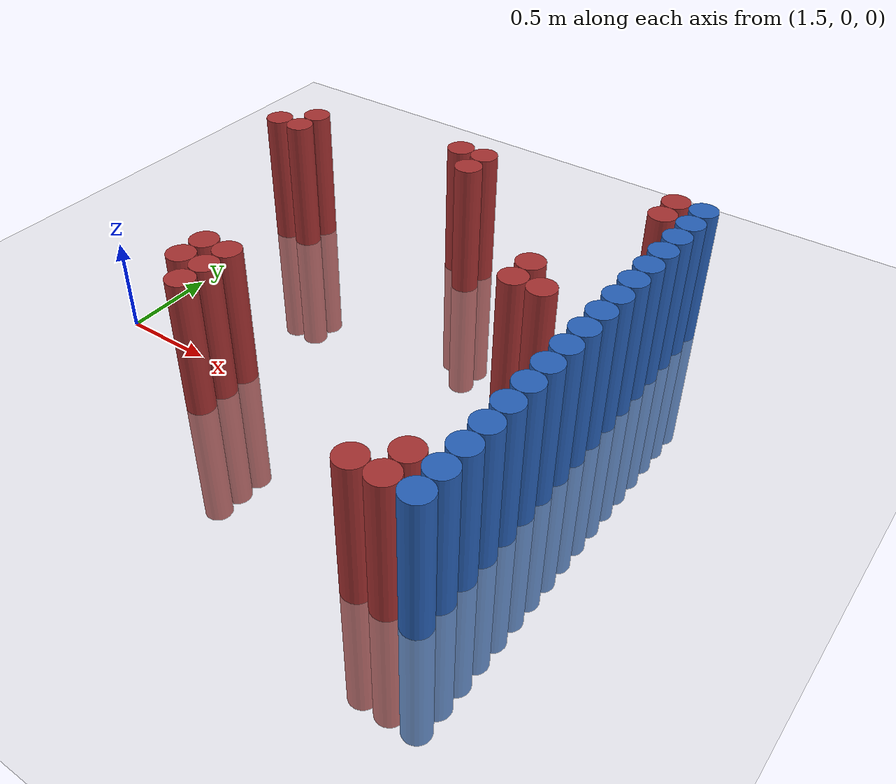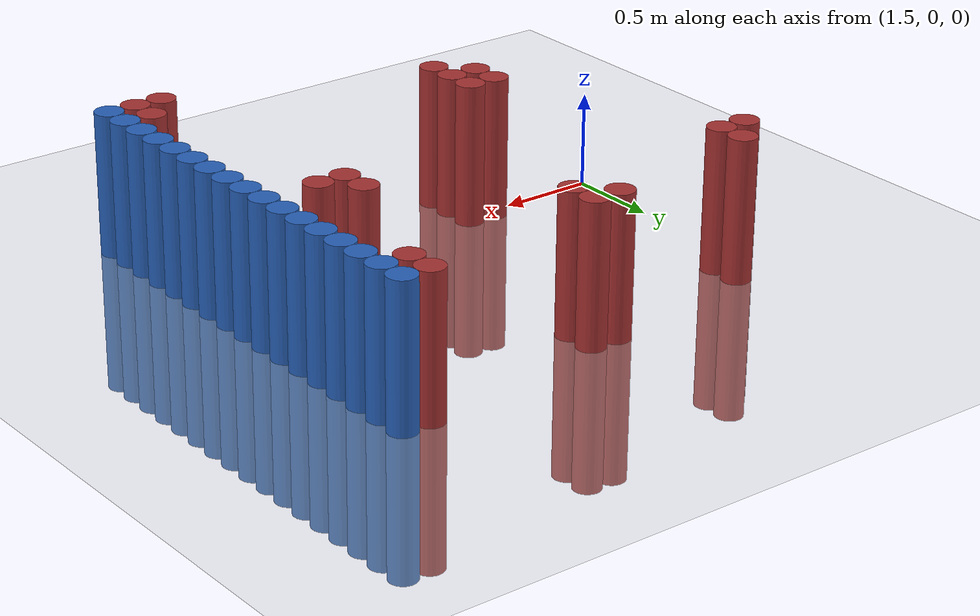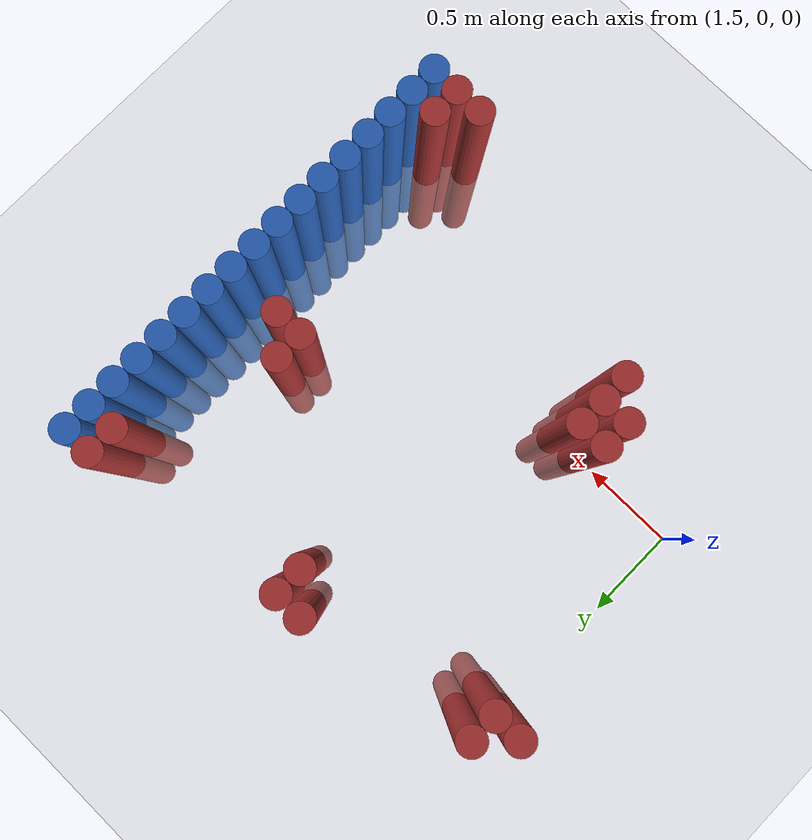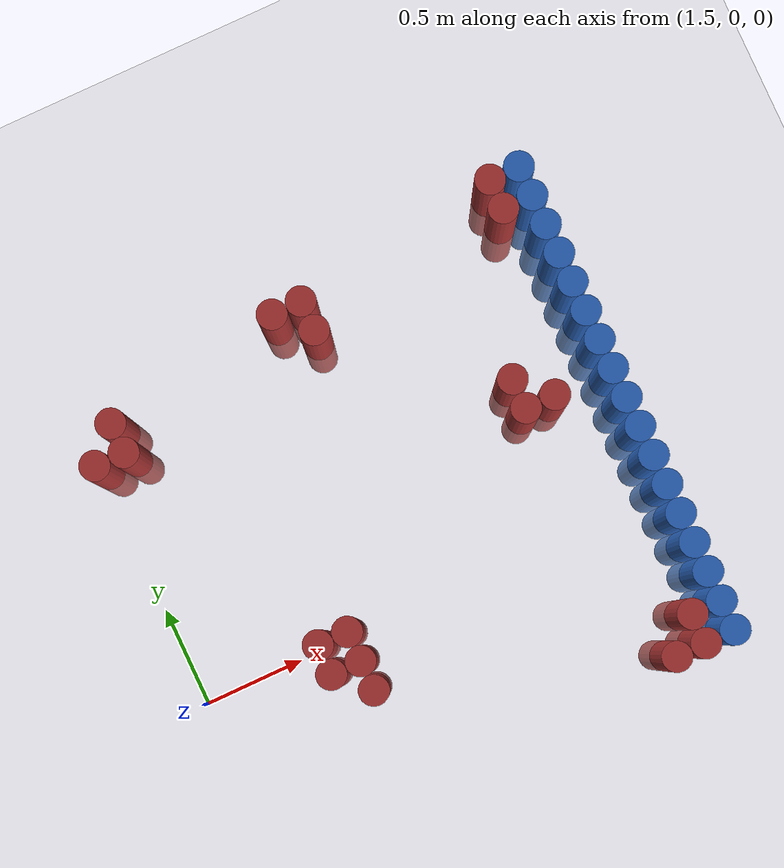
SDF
<sdf version="1.6">
 <world name="default">
  <model name="ground_plane">
   <static>1</static>
   <link name="link">
    <collision name="collision">
     <geometry><plane><normal>0 0 1</normal><size>100 100</size></plane></geometry>
     <surface><friction><ode><mu>100</mu><mu2>50</mu2></ode></friction></surface>
    </collision>
    <visual name="visual">
     <cast_shadows>0</cast_shadows>
     <geometry><plane><normal>0 0 1</normal><size>100 100</size></plane></geometry>
     <material>
      <script><uri>file://media/materials/scripts/gazebo.material</uri><name>Gazebo/Grey</name></script>
     </material>
    </visual>
   </link>
  </model>
  <model name="unit_cylinder_104">
   <static>1</static>
   <pose>3.925000 -0.725000 0.000000 0.000000 0.000000 0.000000</pose>
   <link name="link">
    <inertial>
     <mass>1</mass>
     <inertia><ixx>0.145833</ixx><ixy>0</ixy><ixz>0</ixz><iyy>0.145833</iyy><iyz>0</iyz><izz>0.125</izz></inertia>
    </inertial>
    <collision name="collision">
     <geometry><cylinder><radius>0.075000</radius><length>1.5</length></cylinder></geometry>
    </collision>
    <visual name="visual">
     <geometry><cylinder><radius>0.075000</radius><length>1.5</length></cylinder></geometry>
     <material>
      <ambient>0.152000 0.379000 0.720000 1</ambient>
      <diffuse>0.152000 0.379000 0.720000 1</diffuse>
     </material>
     <material>
      <script><name>Gazebo/Grey</name><uri>file://media/materials/scripts/gazebo.material</uri></script>
     </material>
    </visual>
   </link>
  </model>
  <model name="unit_cylinder_106">
   <static>1</static>
   <pose>3.925000 -0.575000 0.000000 0.000000 0.000000 0.000000</pose>
   <link name="link">
    <inertial>
     <mass>1</mass>
     <inertia><ixx>0.145833</ixx><ixy>0</ixy><ixz>0</ixz><iyy>0.145833</iyy><iyz>0</iyz><izz>0.125</izz></inertia>
    </inertial>
    <collision name="collision">
     <geometry><cylinder><radius>0.075000</radius><length>1.5</length></cylinder></geometry>
    </collision>
    <visual name="visual">
     <geometry><cylinder><radius>0.075000</radius><length>1.5</length></cylinder></geometry>
     <material>
      <ambient>0.152000 0.379000 0.720000 1</ambient>
      <diffuse>0.152000 0.379000 0.720000 1</diffuse>
     </material>
     <material>
      <script><name>Gazebo/Grey</name><uri>file://media/materials/scripts/gazebo.material</uri></script>
     </material>
    </visual>
   </link>
  </model>
  <model name="unit_cylinder_108">
   <static>1</static>
   <pose>3.925000 -0.425000 0.000000 0.000000 0.000000 0.000000</pose>
   <link name="link">
    <inertial>
     <mass>1</mass>
     <inertia><ixx>0.145833</ixx><ixy>0</ixy><ixz>0</ixz><iyy>0.145833</iyy><iyz>0</iyz><izz>0.125</izz></inertia>
    </inertial>
    <collision name="collision">
     <geometry><cylinder><radius>0.075000</radius><length>1.5</length></cylinder></geometry>
    </collision>
    <visual name="visual">
     <geometry><cylinder><radius>0.075000</radius><length>1.5</length></cylinder></geometry>
     <material>
      <ambient>0.152000 0.379000 0.720000 1</ambient>
      <diffuse>0.152000 0.379000 0.720000 1</diffuse>
     </material>
     <material>
      <script><name>Gazebo/Grey</name><uri>file://media/materials/scripts/gazebo.material</uri></script>
     </material>
    </visual>
   </link>
  </model>
  <model name="unit_cylinder_110">
   <static>1</static>
   <pose>3.925000 -0.275000 0.000000 0.000000 0.000000 0.000000</pose>
   <link name="link">
    <inertial>
     <mass>1</mass>
     <inertia><ixx>0.145833</ixx><ixy>0</ixy><ixz>0</ixz><iyy>0.145833</iyy><iyz>0</iyz><izz>0.125</izz></inertia>
    </inertial>
    <collision name="collision">
     <geometry><cylinder><radius>0.075000</radius><length>1.5</length></cylinder></geometry>
    </collision>
    <visual name="visual">
     <geometry><cylinder><radius>0.075000</radius><length>1.5</length></cylinder></geometry>
     <material>
      <ambient>0.152000 0.379000 0.720000 1</ambient>
      <diffuse>0.152000 0.379000 0.720000 1</diffuse>
     </material>
     <material>
      <script><name>Gazebo/Grey</name><uri>file://media/materials/scripts/gazebo.material</uri></script>
     </material>
    </visual>
   </link>
  </model>
  <model name="unit_cylinder_112">
   <static>1</static>
   <pose>3.925000 -0.125000 0.000000 0.000000 0.000000 0.000000</pose>
   <link name="link">
    <inertial>
     <mass>1</mass>
     <inertia><ixx>0.145833</ixx><ixy>0</ixy><ixz>0</ixz><iyy>0.145833</iyy><iyz>0</iyz><izz>0.125</izz></inertia>
    </inertial>
    <collision name="collision">
     <geometry><cylinder><radius>0.075000</radius><length>1.5</length></cylinder></geometry>
    </collision>
    <visual name="visual">
     <geometry><cylinder><radius>0.075000</radius><length>1.5</length></cylinder></geometry>
     <material>
      <ambient>0.152000 0.379000 0.720000 1</ambient>
      <diffuse>0.152000 0.379000 0.720000 1</diffuse>
     </material>
     <material>
      <script><name>Gazebo/Grey</name><uri>file://media/materials/scripts/gazebo.material</uri></script>
     </material>
    </visual>
   </link>
  </model>
  <model name="unit_cylinder_114">
   <static>1</static>
   <pose>3.925000 0.025000 0.000000 0.000000 0.000000 0.000000</pose>
   <link name="link">
    <inertial>
     <mass>1</mass>
     <inertia><ixx>0.145833</ixx><ixy>0</ixy><ixz>0</ixz><iyy>0.145833</iyy><iyz>0</iyz><izz>0.125</izz></inertia>
    </inertial>
    <collision name="collision">
     <geometry><cylinder><radius>0.075000</radius><length>1.5</length></cylinder></geometry>
    </collision>
    <visual name="visual">
     <geometry><cylinder><radius>0.075000</radius><length>1.5</length></cylinder></geometry>
     <material>
      <ambient>0.152000 0.379000 0.720000 1</ambient>
      <diffuse>0.152000 0.379000 0.720000 1</diffuse>
     </material>
     <material>
      <script><name>Gazebo/Grey</name><uri>file://media/materials/scripts/gazebo.material</uri></script>
     </material>
    </visual>
   </link>
  </model>
  <model name="unit_cylinder_116">
   <static>1</static>
   <pose>3.925000 0.175000 0.000000 0.000000 0.000000 0.000000</pose>
   <link name="link">
    <inertial>
     <mass>1</mass>
     <inertia><ixx>0.145833</ixx><ixy>0</ixy><ixz>0</ixz><iyy>0.145833</iyy><iyz>0</iyz><izz>0.125</izz></inertia>
    </inertial>
    <collision name="collision">
     <geometry><cylinder><radius>0.075000</radius><length>1.5</length></cylinder></geometry>
    </collision>
    <visual name="visual">
     <geometry><cylinder><radius>0.075000</radius><length>1.5</length></cylinder></geometry>
     <material>
      <ambient>0.152000 0.379000 0.720000 1</ambient>
      <diffuse>0.152000 0.379000 0.720000 1</diffuse>
     </material>
     <material>
      <script><name>Gazebo/Grey</name><uri>file://media/materials/scripts/gazebo.material</uri></script>
     </material>
    </visual>
   </link>
  </model>
  <model name="unit_cylinder_118">
   <static>1</static>
   <pose>3.925000 0.325000 0.000000 0.000000 0.000000 0.000000</pose>
   <link name="link">
    <inertial>
     <mass>1</mass>
     <inertia><ixx>0.145833</ixx><ixy>0</ixy><ixz>0</ixz><iyy>0.145833</iyy><iyz>0</iyz><izz>0.125</izz></inertia>
    </inertial>
    <collision name="collision">
     <geometry><cylinder><radius>0.075000</radius><length>1.5</length></cylinder></geometry>
    </collision>
    <visual name="visual">
     <geometry><cylinder><radius>0.075000</radius><length>1.5</length></cylinder></geometry>
     <material>
      <ambient>0.152000 0.379000 0.720000 1</ambient>
      <diffuse>0.152000 0.379000 0.720000 1</diffuse>
     </material>
     <material>
      <script><name>Gazebo/Grey</name><uri>file://media/materials/scripts/gazebo.material</uri></script>
     </material>
    </visual>
   </link>
  </model>
  <model name="unit_cylinder_120">
   <static>1</static>
   <pose>3.925000 0.475000 0.000000 0.000000 0.000000 0.000000</pose>
   <link name="link">
    <inertial>
     <mass>1</mass>
     <inertia><ixx>0.145833</ixx><ixy>0</ixy><ixz>0</ixz><iyy>0.145833</iyy><iyz>0</iyz><izz>0.125</izz></inertia>
    </inertial>
    <collision name="collision">
     <geometry><cylinder><radius>0.075000</radius><length>1.5</length></cylinder></geometry>
    </collision>
    <visual name="visual">
     <geometry><cylinder><radius>0.075000</radius><length>1.5</length></cylinder></geometry>
     <material>
      <ambient>0.152000 0.379000 0.720000 1</ambient>
      <diffuse>0.152000 0.379000 0.720000 1</diffuse>
     </material>
     <material>
      <script><name>Gazebo/Grey</name><uri>file://media/materials/scripts/gazebo.material</uri></script>
     </material>
    </visual>
   </link>
  </model>
  <model name="unit_cylinder_122">
   <static>1</static>
   <pose>3.925000 0.625000 0.000000 0.000000 0.000000 0.000000</pose>
   <link name="link">
    <inertial>
     <mass>1</mass>
     <inertia><ixx>0.145833</ixx><ixy>0</ixy><ixz>0</ixz><iyy>0.145833</iyy><iyz>0</iyz><izz>0.125</izz></inertia>
    </inertial>
    <collision name="collision">
     <geometry><cylinder><radius>0.075000</radius><length>1.5</length></cylinder></geometry>
    </collision>
    <visual name="visual">
     <geometry><cylinder><radius>0.075000</radius><length>1.5</length></cylinder></geometry>
     <material>
      <ambient>0.152000 0.379000 0.720000 1</ambient>
      <diffuse>0.152000 0.379000 0.720000 1</diffuse>
     </material>
     <material>
      <script><name>Gazebo/Grey</name><uri>file://media/materials/scripts/gazebo.material</uri></script>
     </material>
    </visual>
   </link>
  </model>
  <model name="unit_cylinder_124">
   <static>1</static>
   <pose>3.925000 0.775000 0.000000 0.000000 0.000000 0.000000</pose>
   <link name="link">
    <inertial>
     <mass>1</mass>
     <inertia><ixx>0.145833</ixx><ixy>0</ixy><ixz>0</ixz><iyy>0.145833</iyy><iyz>0</iyz><izz>0.125</izz></inertia>
    </inertial>
    <collision name="collision">
     <geometry><cylinder><radius>0.075000</radius><length>1.5</length></cylinder></geometry>
    </collision>
    <visual name="visual">
     <geometry><cylinder><radius>0.075000</radius><length>1.5</length></cylinder></geometry>
     <material>
      <ambient>0.152000 0.379000 0.720000 1</ambient>
      <diffuse>0.152000 0.379000 0.720000 1</diffuse>
     </material>
     <material>
      <script><name>Gazebo/Grey</name><uri>file://media/materials/scripts/gazebo.material</uri></script>
     </material>
    </visual>
   </link>
  </model>
  <model name="unit_cylinder_126">
   <static>1</static>
   <pose>3.925000 0.925000 0.000000 0.000000 0.000000 0.000000</pose>
   <link name="link">
    <inertial>
     <mass>1</mass>
     <inertia><ixx>0.145833</ixx><ixy>0</ixy><ixz>0</ixz><iyy>0.145833</iyy><iyz>0</iyz><izz>0.125</izz></inertia>
    </inertial>
    <collision name="collision">
     <geometry><cylinder><radius>0.075000</radius><length>1.5</length></cylinder></geometry>
    </collision>
    <visual name="visual">
     <geometry><cylinder><radius>0.075000</radius><length>1.5</length></cylinder></geometry>
     <material>
      <ambient>0.152000 0.379000 0.720000 1</ambient>
      <diffuse>0.152000 0.379000 0.720000 1</diffuse>
     </material>
     <material>
      <script><name>Gazebo/Grey</name><uri>file://media/materials/scripts/gazebo.material</uri></script>
     </material>
    </visual>
   </link>
  </model>
  <model name="unit_cylinder_128">
   <static>1</static>
   <pose>3.925000 1.075000 0.000000 0.000000 0.000000 0.000000</pose>
   <link name="link">
    <inertial>
     <mass>1</mass>
     <inertia><ixx>0.145833</ixx><ixy>0</ixy><ixz>0</ixz><iyy>0.145833</iyy><iyz>0</iyz><izz>0.125</izz></inertia>
    </inertial>
    <collision name="collision">
     <geometry><cylinder><radius>0.075000</radius><length>1.5</length></cylinder></geometry>
    </collision>
    <visual name="visual">
     <geometry><cylinder><radius>0.075000</radius><length>1.5</length></cylinder></geometry>
     <material>
      <ambient>0.152000 0.379000 0.720000 1</ambient>
      <diffuse>0.152000 0.379000 0.720000 1</diffuse>
     </material>
     <material>
      <script><name>Gazebo/Grey</name><uri>file://media/materials/scripts/gazebo.material</uri></script>
     </material>
    </visual>
   </link>
  </model>
  <model name="unit_cylinder_130">
   <static>1</static>
   <pose>3.925000 1.225000 0.000000 0.000000 0.000000 0.000000</pose>
   <link name="link">
    <inertial>
     <mass>1</mass>
     <inertia><ixx>0.145833</ixx><ixy>0</ixy><ixz>0</ixz><iyy>0.145833</iyy><iyz>0</iyz><izz>0.125</izz></inertia>
    </inertial>
    <collision name="collision">
     <geometry><cylinder><radius>0.075000</radius><length>1.5</length></cylinder></geometry>
    </collision>
    <visual name="visual">
     <geometry><cylinder><radius>0.075000</radius><length>1.5</length></cylinder></geometry>
     <material>
      <ambient>0.152000 0.379000 0.720000 1</ambient>
      <diffuse>0.152000 0.379000 0.720000 1</diffuse>
     </material>
     <material>
      <script><name>Gazebo/Grey</name><uri>file://media/materials/scripts/gazebo.material</uri></script>
     </material>
    </visual>
   </link>
  </model>
  <model name="unit_cylinder_132">
   <static>1</static>
   <pose>3.925000 1.375000 0.000000 0.000000 0.000000 0.000000</pose>
   <link name="link">
    <inertial>
     <mass>1</mass>
     <inertia><ixx>0.145833</ixx><ixy>0</ixy><ixz>0</ixz><iyy>0.145833</iyy><iyz>0</iyz><izz>0.125</izz></inertia>
    </inertial>
    <collision name="collision">
     <geometry><cylinder><radius>0.075000</radius><length>1.5</length></cylinder></geometry>
    </collision>
    <visual name="visual">
     <geometry><cylinder><radius>0.075000</radius><length>1.5</length></cylinder></geometry>
     <material>
      <ambient>0.152000 0.379000 0.720000 1</ambient>
      <diffuse>0.152000 0.379000 0.720000 1</diffuse>
     </material>
     <material>
      <script><name>Gazebo/Grey</name><uri>file://media/materials/scripts/gazebo.material</uri></script>
     </material>
    </visual>
   </link>
  </model>
  <model name="unit_cylinder_134">
   <static>1</static>
   <pose>3.925000 1.525000 0.000000 0.000000 0.000000 0.000000</pose>
   <link name="link">
    <inertial>
     <mass>1</mass>
     <inertia><ixx>0.145833</ixx><ixy>0</ixy><ixz>0</ixz><iyy>0.145833</iyy><iyz>0</iyz><izz>0.125</izz></inertia>
    </inertial>
    <collision name="collision">
     <geometry><cylinder><radius>0.075000</radius><length>1.5</length></cylinder></geometry>
    </collision>
    <visual name="visual">
     <geometry><cylinder><radius>0.075000</radius><length>1.5</length></cylinder></geometry>
     <material>
      <ambient>0.152000 0.379000 0.720000 1</ambient>
      <diffuse>0.152000 0.379000 0.720000 1</diffuse>
     </material>
     <material>
      <script><name>Gazebo/Grey</name><uri>file://media/materials/scripts/gazebo.material</uri></script>
     </material>
    </visual>
   </link>
  </model>
  <model name="unit_cylinder_136">
   <static>1</static>
   <pose>3.925000 1.675000 0.000000 0.000000 0.000000 0.000000</pose>
   <link name="link">
    <inertial>
     <mass>1</mass>
     <inertia><ixx>0.145833</ixx><ixy>0</ixy><ixz>0</ixz><iyy>0.145833</iyy><iyz>0</iyz><izz>0.125</izz></inertia>
    </inertial>
    <collision name="collision">
     <geometry><cylinder><radius>0.075000</radius><length>1.5</length></cylinder></geometry>
    </collision>
    <visual name="visual">
     <geometry><cylinder><radius>0.075000</radius><length>1.5</length></cylinder></geometry>
     <material>
      <ambient>0.152000 0.379000 0.720000 1</ambient>
      <diffuse>0.152000 0.379000 0.720000 1</diffuse>
     </material>
     <material>
      <script><name>Gazebo/Grey</name><uri>file://media/materials/scripts/gazebo.material</uri></script>
     </material>
    </visual>
   </link>
  </model>
  <model name="unit_cylinder_425">
   <static>1</static>
   <pose>1.525000 1.225000 0.000000 0.000000 0.000000 0.000000</pose>
   <link name="link">
    <inertial>
     <mass>1</mass>
     <inertia><ixx>0.145833</ixx><ixy>0</ixy><ixz>0</ixz><iyy>0.145833</iyy><iyz>0</iyz><izz>0.125</izz></inertia>
    </inertial>
    <collision name="collision">
     <geometry><cylinder><radius>0.075000</radius><length>1.5</length></cylinder></geometry>
    </collision>
    <visual name="visual">
     <geometry><cylinder><radius>0.075000</radius><length>1.5</length></cylinder></geometry>
     <material>
      <ambient>0.648000 0.192000 0.192000 1</ambient>
      <diffuse>0.648000 0.192000 0.192000 1</diffuse>
     </material>
     <material>
      <script><name>Gazebo/Grey</name><uri>file://media/materials/scripts/gazebo.material</uri></script>
     </material>
    </visual>
   </link>
  </model>
  <model name="unit_cylinder_428">
   <static>1</static>
   <pose>1.675000 1.225000 0.000000 0.000000 0.000000 0.000000</pose>
   <link name="link">
    <inertial>
     <mass>1</mass>
     <inertia><ixx>0.145833</ixx><ixy>0</ixy><ixz>0</ixz><iyy>0.145833</iyy><iyz>0</iyz><izz>0.125</izz></inertia>
    </inertial>
    <collision name="collision">
     <geometry><cylinder><radius>0.075000</radius><length>1.5</length></cylinder></geometry>
    </collision>
    <visual name="visual">
     <geometry><cylinder><radius>0.075000</radius><length>1.5</length></cylinder></geometry>
     <material>
      <ambient>0.648000 0.192000 0.192000 1</ambient>
      <diffuse>0.648000 0.192000 0.192000 1</diffuse>
     </material>
     <material>
      <script><name>Gazebo/Grey</name><uri>file://media/materials/scripts/gazebo.material</uri></script>
     </material>
    </visual>
   </link>
  </model>
  <model name="unit_cylinder_429">
   <static>1</static>
   <pose>1.675000 1.375000 0.000000 0.000000 0.000000 0.000000</pose>
   <link name="link">
    <inertial>
     <mass>1</mass>
     <inertia><ixx>0.145833</ixx><ixy>0</ixy><ixz>0</ixz><iyy>0.145833</iyy><iyz>0</iyz><izz>0.125</izz></inertia>
    </inertial>
    <collision name="collision">
     <geometry><cylinder><radius>0.075000</radius><length>1.5</length></cylinder></geometry>
    </collision>
    <visual name="visual">
     <geometry><cylinder><radius>0.075000</radius><length>1.5</length></cylinder></geometry>
     <material>
      <ambient>0.648000 0.192000 0.192000 1</ambient>
      <diffuse>0.648000 0.192000 0.192000 1</diffuse>
     </material>
     <material>
      <script><name>Gazebo/Grey</name><uri>file://media/materials/scripts/gazebo.material</uri></script>
     </material>
    </visual>
   </link>
  </model>
  <model name="unit_cylinder_452">
   <static>1</static>
   <pose>2.125000 -0.125000 0.000000 0.000000 0.000000 0.000000</pose>
   <link name="link">
    <inertial>
     <mass>1</mass>
     <inertia><ixx>0.145833</ixx><ixy>0</ixy><ixz>0</ixz><iyy>0.145833</iyy><iyz>0</iyz><izz>0.125</izz></inertia>
    </inertial>
    <collision name="collision">
     <geometry><cylinder><radius>0.075000</radius><length>1.5</length></cylinder></geometry>
    </collision>
    <visual name="visual">
     <geometry><cylinder><radius>0.075000</radius><length>1.5</length></cylinder></geometry>
     <material>
      <ambient>0.648000 0.192000 0.192000 1</ambient>
      <diffuse>0.648000 0.192000 0.192000 1</diffuse>
     </material>
     <material>
      <script><name>Gazebo/Grey</name><uri>file://media/materials/scripts/gazebo.material</uri></script>
     </material>
    </visual>
   </link>
  </model>
  <model name="unit_cylinder_453">
   <static>1</static>
   <pose>2.125000 0.025000 0.000000 0.000000 0.000000 0.000000</pose>
   <link name="link">
    <inertial>
     <mass>1</mass>
     <inertia><ixx>0.145833</ixx><ixy>0</ixy><ixz>0</ixz><iyy>0.145833</iyy><iyz>0</iyz><izz>0.125</izz></inertia>
    </inertial>
    <collision name="collision">
     <geometry><cylinder><radius>0.075000</radius><length>1.5</length></cylinder></geometry>
    </collision>
    <visual name="visual">
     <geometry><cylinder><radius>0.075000</radius><length>1.5</length></cylinder></geometry>
     <material>
      <ambient>0.648000 0.192000 0.192000 1</ambient>
      <diffuse>0.648000 0.192000 0.192000 1</diffuse>
     </material>
     <material>
      <script><name>Gazebo/Grey</name><uri>file://media/materials/scripts/gazebo.material</uri></script>
     </material>
    </visual>
   </link>
  </model>
  <model name="unit_cylinder_460">
   <static>1</static>
   <pose>2.275000 -0.275000 0.000000 0.000000 0.000000 0.000000</pose>
   <link name="link">
    <inertial>
     <mass>1</mass>
     <inertia><ixx>0.145833</ixx><ixy>0</ixy><ixz>0</ixz><iyy>0.145833</iyy><iyz>0</iyz><izz>0.125</izz></inertia>
    </inertial>
    <collision name="collision">
     <geometry><cylinder><radius>0.075000</radius><length>1.5</length></cylinder></geometry>
    </collision>
    <visual name="visual">
     <geometry><cylinder><radius>0.075000</radius><length>1.5</length></cylinder></geometry>
     <material>
      <ambient>0.648000 0.192000 0.192000 1</ambient>
      <diffuse>0.648000 0.192000 0.192000 1</diffuse>
     </material>
     <material>
      <script><name>Gazebo/Grey</name><uri>file://media/materials/scripts/gazebo.material</uri></script>
     </material>
    </visual>
   </link>
  </model>
  <model name="unit_cylinder_461">
   <static>1</static>
   <pose>2.275000 -0.125000 0.000000 0.000000 0.000000 0.000000</pose>
   <link name="link">
    <inertial>
     <mass>1</mass>
     <inertia><ixx>0.145833</ixx><ixy>0</ixy><ixz>0</ixz><iyy>0.145833</iyy><iyz>0</iyz><izz>0.125</izz></inertia>
    </inertial>
    <collision name="collision">
     <geometry><cylinder><radius>0.075000</radius><length>1.5</length></cylinder></geometry>
    </collision>
    <visual name="visual">
     <geometry><cylinder><radius>0.075000</radius><length>1.5</length></cylinder></geometry>
     <material>
      <ambient>0.648000 0.192000 0.192000 1</ambient>
      <diffuse>0.648000 0.192000 0.192000 1</diffuse>
     </material>
     <material>
      <script><name>Gazebo/Grey</name><uri>file://media/materials/scripts/gazebo.material</uri></script>
     </material>
    </visual>
   </link>
  </model>
  <model name="unit_cylinder_462">
   <static>1</static>
   <pose>2.275000 0.025000 0.000000 0.000000 0.000000 0.000000</pose>
   <link name="link">
    <inertial>
     <mass>1</mass>
     <inertia><ixx>0.145833</ixx><ixy>0</ixy><ixz>0</ixz><iyy>0.145833</iyy><iyz>0</iyz><izz>0.125</izz></inertia>
    </inertial>
    <collision name="collision">
     <geometry><cylinder><radius>0.075000</radius><length>1.5</length></cylinder></geometry>
    </collision>
    <visual name="visual">
     <geometry><cylinder><radius>0.075000</radius><length>1.5</length></cylinder></geometry>
     <material>
      <ambient>0.648000 0.192000 0.192000 1</ambient>
      <diffuse>0.648000 0.192000 0.192000 1</diffuse>
     </material>
     <material>
      <script><name>Gazebo/Grey</name><uri>file://media/materials/scripts/gazebo.material</uri></script>
     </material>
    </visual>
   </link>
  </model>
  <model name="unit_cylinder_490">
   <static>1</static>
   <pose>2.575000 1.525000 0.000000 0.000000 0.000000 0.000000</pose>
   <link name="link">
    <inertial>
     <mass>1</mass>
     <inertia><ixx>0.145833</ixx><ixy>0</ixy><ixz>0</ixz><iyy>0.145833</iyy><iyz>0</iyz><izz>0.125</izz></inertia>
    </inertial>
    <collision name="collision">
     <geometry><cylinder><radius>0.075000</radius><length>1.5</length></cylinder></geometry>
    </collision>
    <visual name="visual">
     <geometry><cylinder><radius>0.075000</radius><length>1.5</length></cylinder></geometry>
     <material>
      <ambient>0.648000 0.192000 0.192000 1</ambient>
      <diffuse>0.648000 0.192000 0.192000 1</diffuse>
     </material>
     <material>
      <script><name>Gazebo/Grey</name><uri>file://media/materials/scripts/gazebo.material</uri></script>
     </material>
    </visual>
   </link>
  </model>
  <model name="unit_cylinder_496">
   <static>1</static>
   <pose>2.725000 1.375000 0.000000 0.000000 0.000000 0.000000</pose>
   <link name="link">
    <inertial>
     <mass>1</mass>
     <inertia><ixx>0.145833</ixx><ixy>0</ixy><ixz>0</ixz><iyy>0.145833</iyy><iyz>0</iyz><izz>0.125</izz></inertia>
    </inertial>
    <collision name="collision">
     <geometry><cylinder><radius>0.075000</radius><length>1.5</length></cylinder></geometry>
    </collision>
    <visual name="visual">
     <geometry><cylinder><radius>0.075000</radius><length>1.5</length></cylinder></geometry>
     <material>
      <ambient>0.648000 0.192000 0.192000 1</ambient>
      <diffuse>0.648000 0.192000 0.192000 1</diffuse>
     </material>
     <material>
      <script><name>Gazebo/Grey</name><uri>file://media/materials/scripts/gazebo.material</uri></script>
     </material>
    </visual>
   </link>
  </model>
  <model name="unit_cylinder_497">
   <static>1</static>
   <pose>2.725000 1.525000 0.000000 0.000000 0.000000 0.000000</pose>
   <link name="link">
    <inertial>
     <mass>1</mass>
     <inertia><ixx>0.145833</ixx><ixy>0</ixy><ixz>0</ixz><iyy>0.145833</iyy><iyz>0</iyz><izz>0.125</izz></inertia>
    </inertial>
    <collision name="collision">
     <geometry><cylinder><radius>0.075000</radius><length>1.5</length></cylinder></geometry>
    </collision>
    <visual name="visual">
     <geometry><cylinder><radius>0.075000</radius><length>1.5</length></cylinder></geometry>
     <material>
      <ambient>0.648000 0.192000 0.192000 1</ambient>
      <diffuse>0.648000 0.192000 0.192000 1</diffuse>
     </material>
     <material>
      <script><name>Gazebo/Grey</name><uri>file://media/materials/scripts/gazebo.material</uri></script>
     </material>
    </visual>
   </link>
  </model>
  <model name="unit_cylinder_530">
   <static>1</static>
   <pose>3.475000 0.625000 0.000000 0.000000 0.000000 0.000000</pose>
   <link name="link">
    <inertial>
     <mass>1</mass>
     <inertia><ixx>0.145833</ixx><ixy>0</ixy><ixz>0</ixz><iyy>0.145833</iyy><iyz>0</iyz><izz>0.125</izz></inertia>
    </inertial>
    <collision name="collision">
     <geometry><cylinder><radius>0.075000</radius><length>1.5</length></cylinder></geometry>
    </collision>
    <visual name="visual">
     <geometry><cylinder><radius>0.075000</radius><length>1.5</length></cylinder></geometry>
     <material>
      <ambient>0.648000 0.192000 0.192000 1</ambient>
      <diffuse>0.648000 0.192000 0.192000 1</diffuse>
     </material>
     <material>
      <script><name>Gazebo/Grey</name><uri>file://media/materials/scripts/gazebo.material</uri></script>
     </material>
    </visual>
   </link>
  </model>
  <model name="unit_cylinder_531">
   <static>1</static>
   <pose>3.475000 0.775000 0.000000 0.000000 0.000000 0.000000</pose>
   <link name="link">
    <inertial>
     <mass>1</mass>
     <inertia><ixx>0.145833</ixx><ixy>0</ixy><ixz>0</ixz><iyy>0.145833</iyy><iyz>0</iyz><izz>0.125</izz></inertia>
    </inertial>
    <collision name="collision">
     <geometry><cylinder><radius>0.075000</radius><length>1.5</length></cylinder></geometry>
    </collision>
    <visual name="visual">
     <geometry><cylinder><radius>0.075000</radius><length>1.5</length></cylinder></geometry>
     <material>
      <ambient>0.648000 0.192000 0.192000 1</ambient>
      <diffuse>0.648000 0.192000 0.192000 1</diffuse>
     </material>
     <material>
      <script><name>Gazebo/Grey</name><uri>file://media/materials/scripts/gazebo.material</uri></script>
     </material>
    </visual>
   </link>
  </model>
  <model name="unit_cylinder_543">
   <static>1</static>
   <pose>3.625000 -0.725000 0.000000 0.000000 0.000000 0.000000</pose>
   <link name="link">
    <inertial>
     <mass>1</mass>
     <inertia><ixx>0.145833</ixx><ixy>0</ixy><ixz>0</ixz><iyy>0.145833</iyy><iyz>0</iyz><izz>0.125</izz></inertia>
    </inertial>
    <collision name="collision">
     <geometry><cylinder><radius>0.075000</radius><length>1.5</length></cylinder></geometry>
    </collision>
    <visual name="visual">
     <geometry><cylinder><radius>0.075000</radius><length>1.5</length></cylinder></geometry>
     <material>
      <ambient>0.648000 0.192000 0.192000 1</ambient>
      <diffuse>0.648000 0.192000 0.192000 1</diffuse>
     </material>
     <material>
      <script><name>Gazebo/Grey</name><uri>file://media/materials/scripts/gazebo.material</uri></script>
     </material>
    </visual>
   </link>
  </model>
  <model name="unit_cylinder_544">
   <static>1</static>
   <pose>3.625000 0.625000 0.000000 0.000000 0.000000 0.000000</pose>
   <link name="link">
    <inertial>
     <mass>1</mass>
     <inertia><ixx>0.145833</ixx><ixy>0</ixy><ixz>0</ixz><iyy>0.145833</iyy><iyz>0</iyz><izz>0.125</izz></inertia>
    </inertial>
    <collision name="collision">
     <geometry><cylinder><radius>0.075000</radius><length>1.5</length></cylinder></geometry>
    </collision>
    <visual name="visual">
     <geometry><cylinder><radius>0.075000</radius><length>1.5</length></cylinder></geometry>
     <material>
      <ambient>0.648000 0.192000 0.192000 1</ambient>
      <diffuse>0.648000 0.192000 0.192000 1</diffuse>
     </material>
     <material>
      <script><name>Gazebo/Grey</name><uri>file://media/materials/scripts/gazebo.material</uri></script>
     </material>
    </visual>
   </link>
  </model>
  <model name="unit_cylinder_556">
   <static>1</static>
   <pose>3.775000 -0.725000 0.000000 0.000000 0.000000 0.000000</pose>
   <link name="link">
    <inertial>
     <mass>1</mass>
     <inertia><ixx>0.145833</ixx><ixy>0</ixy><ixz>0</ixz><iyy>0.145833</iyy><iyz>0</iyz><izz>0.125</izz></inertia>
    </inertial>
    <collision name="collision">
     <geometry><cylinder><radius>0.075000</radius><length>1.5</length></cylinder></geometry>
    </collision>
    <visual name="visual">
     <geometry><cylinder><radius>0.075000</radius><length>1.5</length></cylinder></geometry>
     <material>
      <ambient>0.648000 0.192000 0.192000 1</ambient>
      <diffuse>0.648000 0.192000 0.192000 1</diffuse>
     </material>
     <material>
      <script><name>Gazebo/Grey</name><uri>file://media/materials/scripts/gazebo.material</uri></script>
     </material>
    </visual>
   </link>
  </model>
  <model name="unit_cylinder_557">
   <static>1</static>
   <pose>3.775000 -0.575000 0.000000 0.000000 0.000000 0.000000</pose>
   <link name="link">
    <inertial>
     <mass>1</mass>
     <inertia><ixx>0.145833</ixx><ixy>0</ixy><ixz>0</ixz><iyy>0.145833</iyy><iyz>0</iyz><izz>0.125</izz></inertia>
    </inertial>
    <collision name="collision">
     <geometry><cylinder><radius>0.075000</radius><length>1.5</length></cylinder></geometry>
    </collision>
    <visual name="visual">
     <geometry><cylinder><radius>0.075000</radius><length>1.5</length></cylinder></geometry>
     <material>
      <ambient>0.648000 0.192000 0.192000 1</ambient>
      <diffuse>0.648000 0.192000 0.192000 1</diffuse>
     </material>
     <material>
      <script><name>Gazebo/Grey</name><uri>file://media/materials/scripts/gazebo.material</uri></script>
     </material>
    </visual>
   </link>
  </model>
  <model name="unit_cylinder_558">
   <static>1</static>
   <pose>3.775000 1.525000 0.000000 0.000000 0.000000 0.000000</pose>
   <link name="link">
    <inertial>
     <mass>1</mass>
     <inertia><ixx>0.145833</ixx><ixy>0</ixy><ixz>0</ixz><iyy>0.145833</iyy><iyz>0</iyz><izz>0.125</izz></inertia>
    </inertial>
    <collision name="collision">
     <geometry><cylinder><radius>0.075000</radius><length>1.5</length></cylinder></geometry>
    </collision>
    <visual name="visual">
     <geometry><cylinder><radius>0.075000</radius><length>1.5</length></cylinder></geometry>
     <material>
      <ambient>0.648000 0.192000 0.192000 1</ambient>
      <diffuse>0.648000 0.192000 0.192000 1</diffuse>
     </material>
     <material>
      <script><name>Gazebo/Grey</name><uri>file://media/materials/scripts/gazebo.material</uri></script>
     </material>
    </visual>
   </link>
  </model>
  <model name="unit_cylinder_559">
   <static>1</static>
   <pose>3.775000 1.675000 0.000000 0.000000 0.000000 0.000000</pose>
   <link name="link">
    <inertial>
     <mass>1</mass>
     <inertia><ixx>0.145833</ixx><ixy>0</ixy><ixz>0</ixz><iyy>0.145833</iyy><iyz>0</iyz><izz>0.125</izz></inertia>
    </inertial>
    <collision name="collision">
     <geometry><cylinder><radius>0.075000</radius><length>1.5</length></cylinder></geometry>
    </collision>
    <visual name="visual">
     <geometry><cylinder><radius>0.075000</radius><length>1.5</length></cylinder></geometry>
     <material>
      <ambient>0.648000 0.192000 0.192000 1</ambient>
      <diffuse>0.648000 0.192000 0.192000 1</diffuse>
     </material>
     <material>
      <script><name>Gazebo/Grey</name><uri>file://media/materials/scripts/gazebo.material</uri></script>
     </material>
    </visual>
   </link>
  </model>
  <model name="unit_cylinder_578">
   <static>1</static>
   <pose>3.925000 -0.725000 0.000000 0.000000 0.000000 0.000000</pose>
   <link name="link">
    <inertial>
     <mass>1</mass>
     <inertia><ixx>0.145833</ixx><ixy>0</ixy><ixz>0</ixz><iyy>0.145833</iyy><iyz>0</iyz><izz>0.125</izz></inertia>
    </inertial>
    <collision name="collision">
     <geometry><cylinder><radius>0.075000</radius><length>1.5</length></cylinder></geometry>
    </collision>
    <visual name="visual">
     <geometry><cylinder><radius>0.075000</radius><length>1.5</length></cylinder></geometry>
     <material>
      <ambient>0.152000 0.379000 0.720000 1</ambient>
      <diffuse>0.152000 0.379000 0.720000 1</diffuse>
     </material>
     <material>
      <script><name>Gazebo/Grey</name><uri>file://media/materials/scripts/gazebo.material</uri></script>
     </material>
    </visual>
   </link>
  </model>
  <model name="unit_cylinder_579">
   <static>1</static>
   <pose>3.925000 -0.575000 0.000000 0.000000 0.000000 0.000000</pose>
   <link name="link">
    <inertial>
     <mass>1</mass>
     <inertia><ixx>0.145833</ixx><ixy>0</ixy><ixz>0</ixz><iyy>0.145833</iyy><iyz>0</iyz><izz>0.125</izz></inertia>
    </inertial>
    <collision name="collision">
     <geometry><cylinder><radius>0.075000</radius><length>1.5</length></cylinder></geometry>
    </collision>
    <visual name="visual">
     <geometry><cylinder><radius>0.075000</radius><length>1.5</length></cylinder></geometry>
     <material>
      <ambient>0.152000 0.379000 0.720000 1</ambient>
      <diffuse>0.152000 0.379000 0.720000 1</diffuse>
     </material>
     <material>
      <script><name>Gazebo/Grey</name><uri>file://media/materials/scripts/gazebo.material</uri></script>
     </material>
    </visual>
   </link>
  </model>
  <model name="unit_cylinder_580">
   <static>1</static>
   <pose>3.925000 -0.425000 0.000000 0.000000 0.000000 0.000000</pose>
   <link name="link">
    <inertial>
     <mass>1</mass>
     <inertia><ixx>0.145833</ixx><ixy>0</ixy><ixz>0</ixz><iyy>0.145833</iyy><iyz>0</iyz><izz>0.125</izz></inertia>
    </inertial>
    <collision name="collision">
     <geometry><cylinder><radius>0.075000</radius><length>1.5</length></cylinder></geometry>
    </collision>
    <visual name="visual">
     <geometry><cylinder><radius>0.075000</radius><length>1.5</length></cylinder></geometry>
     <material>
      <ambient>0.152000 0.379000 0.720000 1</ambient>
      <diffuse>0.152000 0.379000 0.720000 1</diffuse>
     </material>
     <material>
      <script><name>Gazebo/Grey</name><uri>file://media/materials/scripts/gazebo.material</uri></script>
     </material>
    </visual>
   </link>
  </model>
  <model name="unit_cylinder_581">
   <static>1</static>
   <pose>3.925000 -0.275000 0.000000 0.000000 0.000000 0.000000</pose>
   <link name="link">
    <inertial>
     <mass>1</mass>
     <inertia><ixx>0.145833</ixx><ixy>0</ixy><ixz>0</ixz><iyy>0.145833</iyy><iyz>0</iyz><izz>0.125</izz></inertia>
    </inertial>
    <collision name="collision">
     <geometry><cylinder><radius>0.075000</radius><length>1.5</length></cylinder></geometry>
    </collision>
    <visual name="visual">
     <geometry><cylinder><radius>0.075000</radius><length>1.5</length></cylinder></geometry>
     <material>
      <ambient>0.152000 0.379000 0.720000 1</ambient>
      <diffuse>0.152000 0.379000 0.720000 1</diffuse>
     </material>
     <material>
      <script><name>Gazebo/Grey</name><uri>file://media/materials/scripts/gazebo.material</uri></script>
     </material>
    </visual>
   </link>
  </model>
  <model name="unit_cylinder_582">
   <static>1</static>
   <pose>3.925000 -0.125000 0.000000 0.000000 0.000000 0.000000</pose>
   <link name="link">
    <inertial>
     <mass>1</mass>
     <inertia><ixx>0.145833</ixx><ixy>0</ixy><ixz>0</ixz><iyy>0.145833</iyy><iyz>0</iyz><izz>0.125</izz></inertia>
    </inertial>
    <collision name="collision">
     <geometry><cylinder><radius>0.075000</radius><length>1.5</length></cylinder></geometry>
    </collision>
    <visual name="visual">
     <geometry><cylinder><radius>0.075000</radius><length>1.5</length></cylinder></geometry>
     <material>
      <ambient>0.152000 0.379000 0.720000 1</ambient>
      <diffuse>0.152000 0.379000 0.720000 1</diffuse>
     </material>
     <material>
      <script><name>Gazebo/Grey</name><uri>file://media/materials/scripts/gazebo.material</uri></script>
     </material>
    </visual>
   </link>
  </model>
  <model name="unit_cylinder_583">
   <static>1</static>
   <pose>3.925000 0.025000 0.000000 0.000000 0.000000 0.000000</pose>
   <link name="link">
    <inertial>
     <mass>1</mass>
     <inertia><ixx>0.145833</ixx><ixy>0</ixy><ixz>0</ixz><iyy>0.145833</iyy><iyz>0</iyz><izz>0.125</izz></inertia>
    </inertial>
    <collision name="collision">
     <geometry><cylinder><radius>0.075000</radius><length>1.5</length></cylinder></geometry>
    </collision>
    <visual name="visual">
     <geometry><cylinder><radius>0.075000</radius><length>1.5</length></cylinder></geometry>
     <material>
      <ambient>0.152000 0.379000 0.720000 1</ambient>
      <diffuse>0.152000 0.379000 0.720000 1</diffuse>
     </material>
     <material>
      <script><name>Gazebo/Grey</name><uri>file://media/materials/scripts/gazebo.material</uri></script>
     </material>
    </visual>
   </link>
  </model>
  <model name="unit_cylinder_584">
   <static>1</static>
   <pose>3.925000 0.175000 0.000000 0.000000 0.000000 0.000000</pose>
   <link name="link">
    <inertial>
     <mass>1</mass>
     <inertia><ixx>0.145833</ixx><ixy>0</ixy><ixz>0</ixz><iyy>0.145833</iyy><iyz>0</iyz><izz>0.125</izz></inertia>
    </inertial>
    <collision name="collision">
     <geometry><cylinder><radius>0.075000</radius><length>1.5</length></cylinder></geometry>
    </collision>
    <visual name="visual">
     <geometry><cylinder><radius>0.075000</radius><length>1.5</length></cylinder></geometry>
     <material>
      <ambient>0.152000 0.379000 0.720000 1</ambient>
      <diffuse>0.152000 0.379000 0.720000 1</diffuse>
     </material>
     <material>
      <script><name>Gazebo/Grey</name><uri>file://media/materials/scripts/gazebo.material</uri></script>
     </material>
    </visual>
   </link>
  </model>
  <model name="unit_cylinder_585">
   <static>1</static>
   <pose>3.925000 0.325000 0.000000 0.000000 0.000000 0.000000</pose>
   <link name="link">
    <inertial>
     <mass>1</mass>
     <inertia><ixx>0.145833</ixx><ixy>0</ixy><ixz>0</ixz><iyy>0.145833</iyy><iyz>0</iyz><izz>0.125</izz></inertia>
    </inertial>
    <collision name="collision">
     <geometry><cylinder><radius>0.075000</radius><length>1.5</length></cylinder></geometry>
    </collision>
    <visual name="visual">
     <geometry><cylinder><radius>0.075000</radius><length>1.5</length></cylinder></geometry>
     <material>
      <ambient>0.152000 0.379000 0.720000 1</ambient>
      <diffuse>0.152000 0.379000 0.720000 1</diffuse>
     </material>
     <material>
      <script><name>Gazebo/Grey</name><uri>file://media/materials/scripts/gazebo.material</uri></script>
     </material>
    </visual>
   </link>
  </model>
  <model name="unit_cylinder_586">
   <static>1</static>
   <pose>3.925000 0.475000 0.000000 0.000000 0.000000 0.000000</pose>
   <link name="link">
    <inertial>
     <mass>1</mass>
     <inertia><ixx>0.145833</ixx><ixy>0</ixy><ixz>0</ixz><iyy>0.145833</iyy><iyz>0</iyz><izz>0.125</izz></inertia>
    </inertial>
    <collision name="collision">
     <geometry><cylinder><radius>0.075000</radius><length>1.5</length></cylinder></geometry>
    </collision>
    <visual name="visual">
     <geometry><cylinder><radius>0.075000</radius><length>1.5</length></cylinder></geometry>
     <material>
      <ambient>0.152000 0.379000 0.720000 1</ambient>
      <diffuse>0.152000 0.379000 0.720000 1</diffuse>
     </material>
     <material>
      <script><name>Gazebo/Grey</name><uri>file://media/materials/scripts/gazebo.material</uri></script>
     </material>
    </visual>
   </link>
  </model>
  <model name="unit_cylinder_587">
   <static>1</static>
   <pose>3.925000 0.625000 0.000000 0.000000 0.000000 0.000000</pose>
   <link name="link">
    <inertial>
     <mass>1</mass>
     <inertia><ixx>0.145833</ixx><ixy>0</ixy><ixz>0</ixz><iyy>0.145833</iyy><iyz>0</iyz><izz>0.125</izz></inertia>
    </inertial>
    <collision name="collision">
     <geometry><cylinder><radius>0.075000</radius><length>1.5</length></cylinder></geometry>
    </collision>
    <visual name="visual">
     <geometry><cylinder><radius>0.075000</radius><length>1.5</length></cylinder></geometry>
     <material>
      <ambient>0.152000 0.379000 0.720000 1</ambient>
      <diffuse>0.152000 0.379000 0.720000 1</diffuse>
     </material>
     <material>
      <script><name>Gazebo/Grey</name><uri>file://media/materials/scripts/gazebo.material</uri></script>
     </material>
    </visual>
   </link>
  </model>
  <model name="unit_cylinder_588">
   <static>1</static>
   <pose>3.925000 0.775000 0.000000 0.000000 0.000000 0.000000</pose>
   <link name="link">
    <inertial>
     <mass>1</mass>
     <inertia><ixx>0.145833</ixx><ixy>0</ixy><ixz>0</ixz><iyy>0.145833</iyy><iyz>0</iyz><izz>0.125</izz></inertia>
    </inertial>
    <collision name="collision">
     <geometry><cylinder><radius>0.075000</radius><length>1.5</length></cylinder></geometry>
    </collision>
    <visual name="visual">
     <geometry><cylinder><radius>0.075000</radius><length>1.5</length></cylinder></geometry>
     <material>
      <ambient>0.152000 0.379000 0.720000 1</ambient>
      <diffuse>0.152000 0.379000 0.720000 1</diffuse>
     </material>
     <material>
      <script><name>Gazebo/Grey</name><uri>file://media/materials/scripts/gazebo.material</uri></script>
     </material>
    </visual>
   </link>
  </model>
  <model name="unit_cylinder_589">
   <static>1</static>
   <pose>3.925000 0.925000 0.000000 0.000000 0.000000 0.000000</pose>
   <link name="link">
    <inertial>
     <mass>1</mass>
     <inertia><ixx>0.145833</ixx><ixy>0</ixy><ixz>0</ixz><iyy>0.145833</iyy><iyz>0</iyz><izz>0.125</izz></inertia>
    </inertial>
    <collision name="collision">
     <geometry><cylinder><radius>0.075000</radius><length>1.5</length></cylinder></geometry>
    </collision>
    <visual name="visual">
     <geometry><cylinder><radius>0.075000</radius><length>1.5</length></cylinder></geometry>
     <material>
      <ambient>0.152000 0.379000 0.720000 1</ambient>
      <diffuse>0.152000 0.379000 0.720000 1</diffuse>
     </material>
     <material>
      <script><name>Gazebo/Grey</name><uri>file://media/materials/scripts/gazebo.material</uri></script>
     </material>
    </visual>
   </link>
  </model>
  <model name="unit_cylinder_590">
   <static>1</static>
   <pose>3.925000 1.075000 0.000000 0.000000 0.000000 0.000000</pose>
   <link name="link">
    <inertial>
     <mass>1</mass>
     <inertia><ixx>0.145833</ixx><ixy>0</ixy><ixz>0</ixz><iyy>0.145833</iyy><iyz>0</iyz><izz>0.125</izz></inertia>
    </inertial>
    <collision name="collision">
     <geometry><cylinder><radius>0.075000</radius><length>1.5</length></cylinder></geometry>
    </collision>
    <visual name="visual">
     <geometry><cylinder><radius>0.075000</radius><length>1.5</length></cylinder></geometry>
     <material>
      <ambient>0.152000 0.379000 0.720000 1</ambient>
      <diffuse>0.152000 0.379000 0.720000 1</diffuse>
     </material>
     <material>
      <script><name>Gazebo/Grey</name><uri>file://media/materials/scripts/gazebo.material</uri></script>
     </material>
    </visual>
   </link>
  </model>
  <model name="unit_cylinder_591">
   <static>1</static>
   <pose>3.925000 1.225000 0.000000 0.000000 0.000000 0.000000</pose>
   <link name="link">
    <inertial>
     <mass>1</mass>
     <inertia><ixx>0.145833</ixx><ixy>0</ixy><ixz>0</ixz><iyy>0.145833</iyy><iyz>0</iyz><izz>0.125</izz></inertia>
    </inertial>
    <collision name="collision">
     <geometry><cylinder><radius>0.075000</radius><length>1.5</length></cylinder></geometry>
    </collision>
    <visual name="visual">
     <geometry><cylinder><radius>0.075000</radius><length>1.5</length></cylinder></geometry>
     <material>
      <ambient>0.152000 0.379000 0.720000 1</ambient>
      <diffuse>0.152000 0.379000 0.720000 1</diffuse>
     </material>
     <material>
      <script><name>Gazebo/Grey</name><uri>file://media/materials/scripts/gazebo.material</uri></script>
     </material>
    </visual>
   </link>
  </model>
  <model name="unit_cylinder_592">
   <static>1</static>
   <pose>3.925000 1.375000 0.000000 0.000000 0.000000 0.000000</pose>
   <link name="link">
    <inertial>
     <mass>1</mass>
     <inertia><ixx>0.145833</ixx><ixy>0</ixy><ixz>0</ixz><iyy>0.145833</iyy><iyz>0</iyz><izz>0.125</izz></inertia>
    </inertial>
    <collision name="collision">
     <geometry><cylinder><radius>0.075000</radius><length>1.5</length></cylinder></geometry>
    </collision>
    <visual name="visual">
     <geometry><cylinder><radius>0.075000</radius><length>1.5</length></cylinder></geometry>
     <material>
      <ambient>0.152000 0.379000 0.720000 1</ambient>
      <diffuse>0.152000 0.379000 0.720000 1</diffuse>
     </material>
     <material>
      <script><name>Gazebo/Grey</name><uri>file://media/materials/scripts/gazebo.material</uri></script>
     </material>
    </visual>
   </link>
  </model>
  <model name="unit_cylinder_593">
   <static>1</static>
   <pose>3.925000 1.525000 0.000000 0.000000 0.000000 0.000000</pose>
   <link name="link">
    <inertial>
     <mass>1</mass>
     <inertia><ixx>0.145833</ixx><ixy>0</ixy><ixz>0</ixz><iyy>0.145833</iyy><iyz>0</iyz><izz>0.125</izz></inertia>
    </inertial>
    <collision name="collision">
     <geometry><cylinder><radius>0.075000</radius><length>1.5</length></cylinder></geometry>
    </collision>
    <visual name="visual">
     <geometry><cylinder><radius>0.075000</radius><length>1.5</length></cylinder></geometry>
     <material>
      <ambient>0.152000 0.379000 0.720000 1</ambient>
      <diffuse>0.152000 0.379000 0.720000 1</diffuse>
     </material>
     <material>
      <script><name>Gazebo/Grey</name><uri>file://media/materials/scripts/gazebo.material</uri></script>
     </material>
    </visual>
   </link>
  </model>
 </world>
</sdf>
